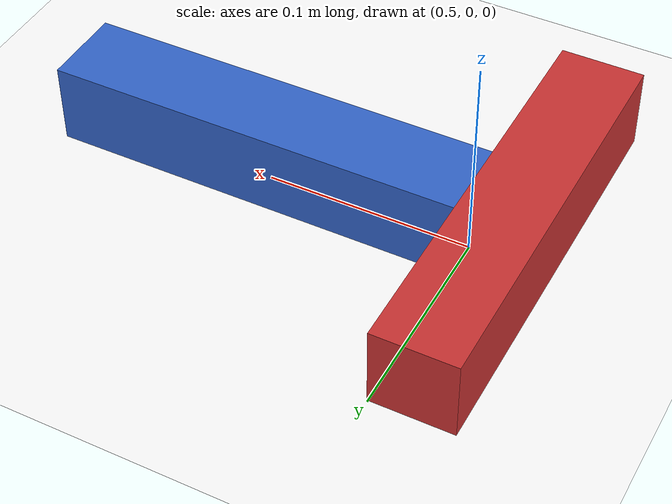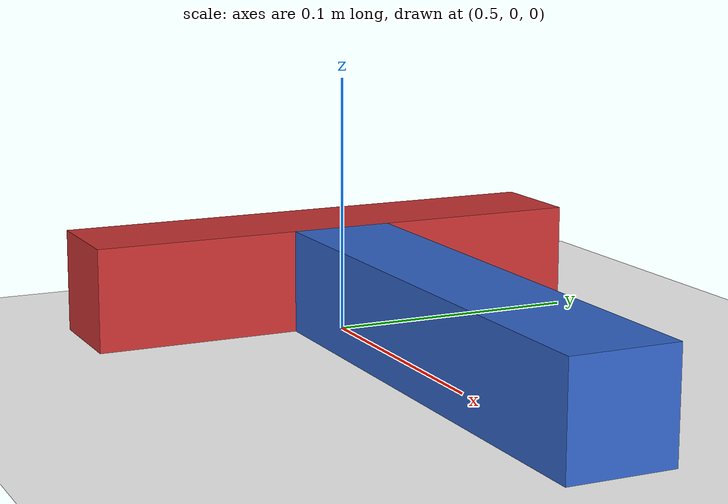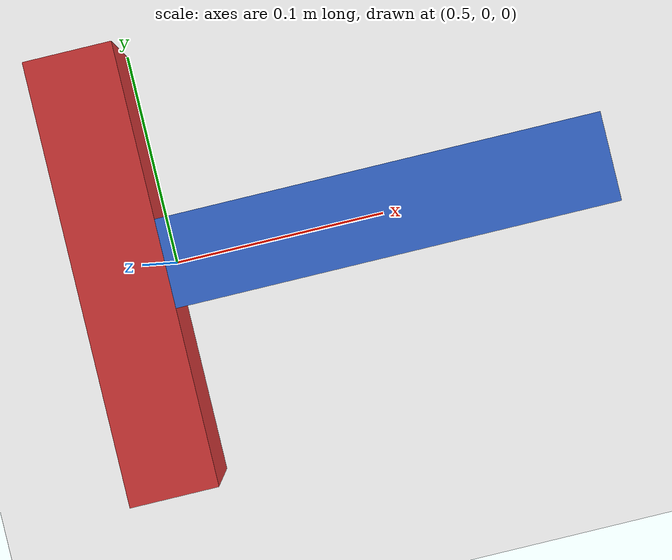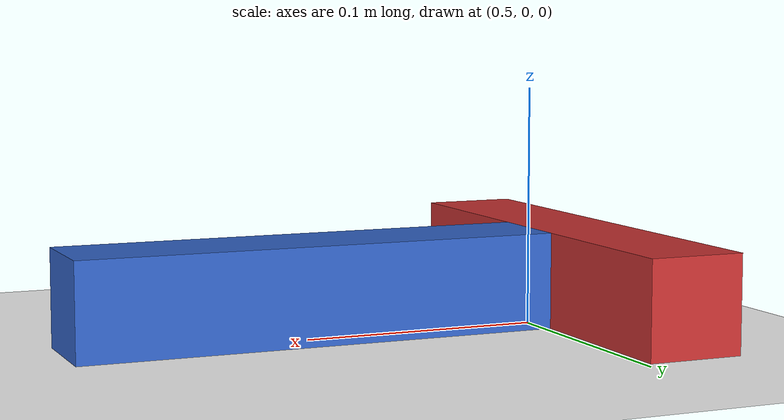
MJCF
<mujoco model="t_block_dual">
  <compiler angle="radian"/>
  <option timestep="0.01"/>
  <default>
    <geom friction="0.5 0.005 0.0001" density="1000"/>
  </default>

  <asset>
  <texture type="skybox" builtin="gradient" rgb1="0.3 0.5 0.7" rgb2="0 0 0" width="512" height="3072"/>
  <texture type="2d" name="groundplane" builtin="checker" mark="edge"
            rgb1="0.2 0.3 0.4" rgb2="0.1 0.2 0.3" markrgb="0.8 0.8 0.8"
            width="300" height="300"/>
  <material name="groundplane" texture="groundplane" texuniform="true"
            texrepeat="5 5" reflectance="0.2"/>
  </asset>

    <asset>
    <!-- Checker texture (dark gray / light gray) -->
    <texture name="tex_floor_checker" type="2d" builtin="checker"
             width="1024" height="1024"
             rgb1="0.90 0.90 0.90" rgb2="0.78 0.78 0.78"/>

    <!-- Material using that texture -->
    <material name="mat_floor_checker"
              texture="tex_floor_checker"
              texrepeat="20 20" texuniform="true"
              reflectance="0.01" shininess="0.4" specular="0.1"
              rgba="1 1 1 1"/>
    </asset>

  <worldbody>

    <geom name="floor" type="plane" size="5 5 0.1" pos="0 0 0" material="mat_floor_checker" rgba="1 1 1 1"/>

    <body name="T_siconos" pos="0.6 0 0.021" quat="0.5 0.5 -0.5 -0.5">
      <freejoint name="root_siconos"/>
      <geom name="T_stem_s" type="box" size="0.02 0.02 0.1" pos="0 0 -0.0"
            rgba="0.2 0.4 0.8 1" conaffinity="0" contype="0"/>
      <geom name="T_top_s" type="box" size="0.1 0.02 0.02" pos="0 0 0.12"
            rgba="0.8 0.2 0.2 1" conaffinity="0" contype="0"/>
    </body>

    <body name="T_mujoco" pos="0.6 0 0.021" quat="0.5 0.5 -0.5 -0.5">
      <freejoint name="root_mujoco"/>
      <geom name="T_stem_m" type="box" size="0.02 0.02 0.15" pos="0 0 -0.05"
            rgba="0.2 0.4 0.8 0.0"
            contype="2" conaffinity="2"/>

      <geom name="T_top_m" type="box" size="0.1 0.02 0.02" pos="0 0 0.12"
            rgba="0.8 0.2 0.2 0.0"
            contype="2" conaffinity="2"/>
    </body>

  </worldbody>
</mujoco>
